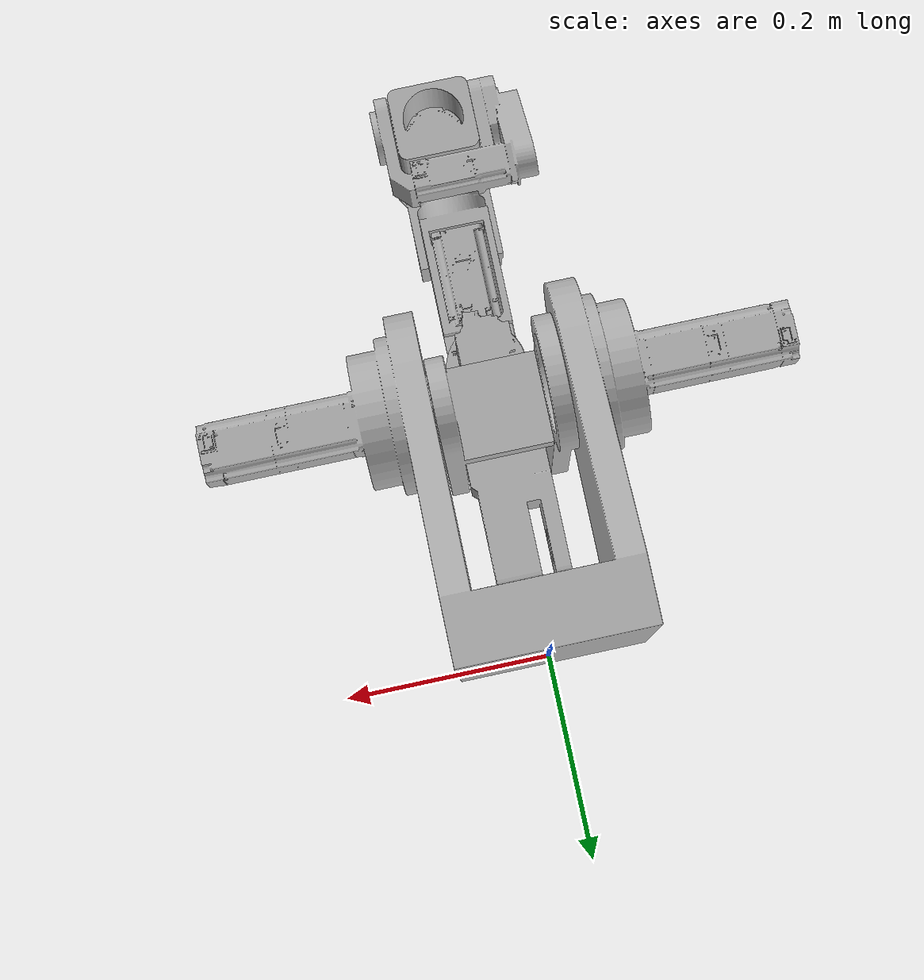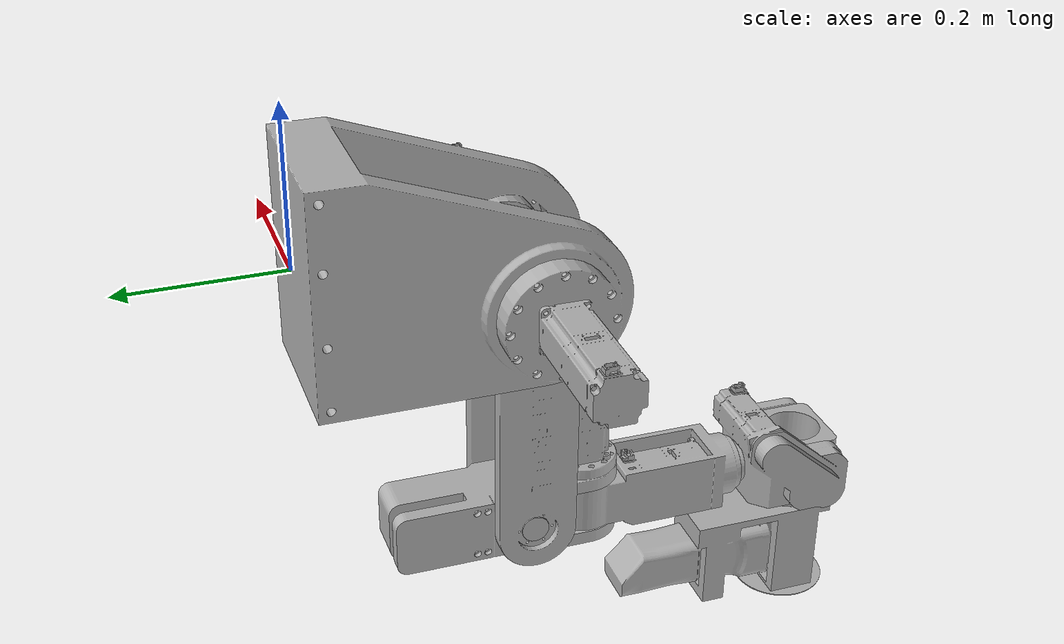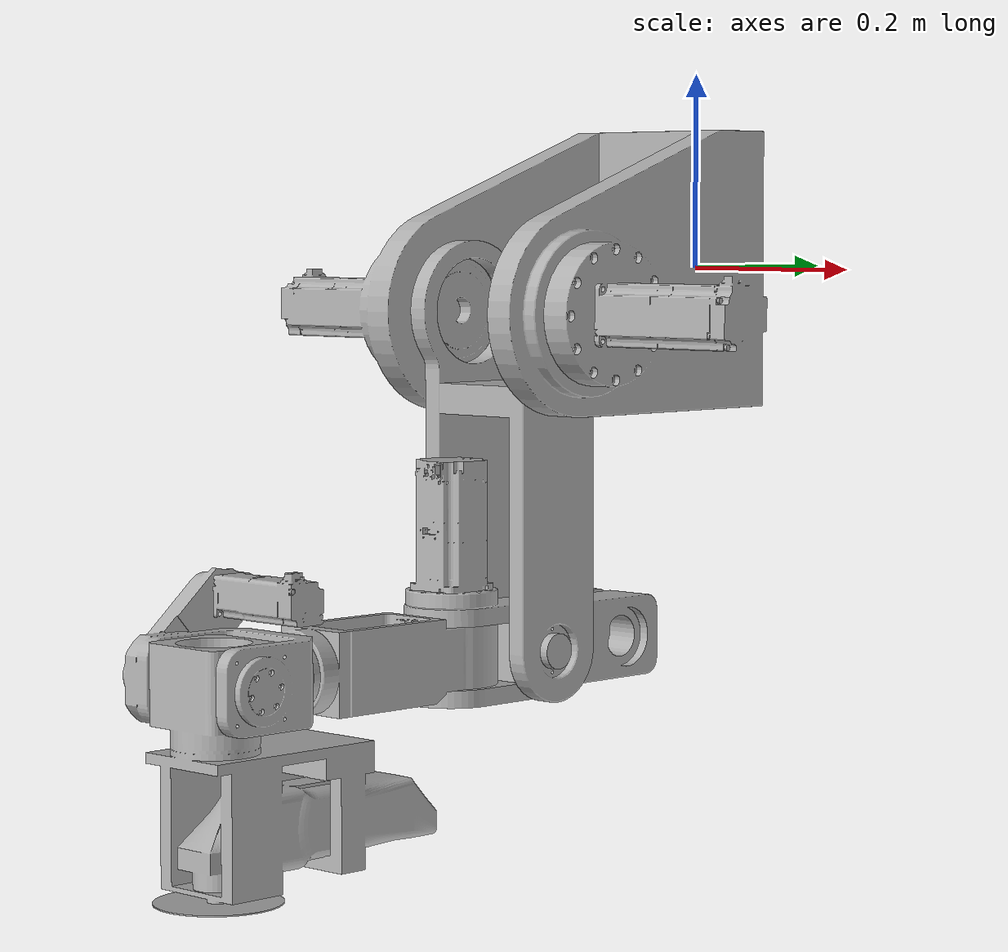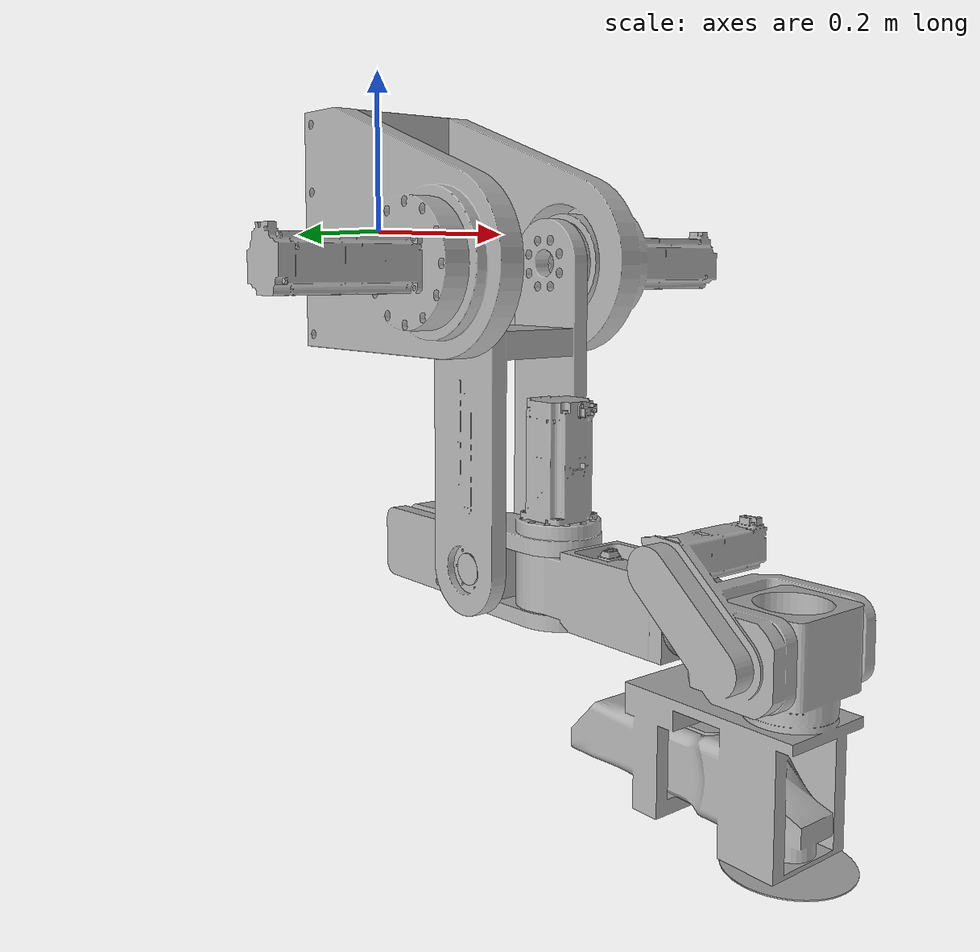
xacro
<?xml version="1.0" ?>
<robot name="manipulator0102" xmlns:xacro="http://www.ros.org/wiki/xacro">

<xacro:include filename="$(find manipulator0102_description)/urdf/materials.xacro" />
<xacro:include filename="$(find manipulator0102_description)/urdf/manipulator0102.trans" />
<xacro:include filename="$(find manipulator0102_description)/urdf/manipulator0102.gazebo" />
<link name="base_link">
  <inertial>
    <origin xyz="-0.0072308689955911075 -0.15081137024602517 -0.01780965802557159" rpy="0 0 0"/>
    <mass value="76.1154222860437"/>
    <inertia ixx="1.295628" iyy="1.21986" izz="1.794207" ixy="-0.001778" iyz="-0.144288" ixz="-0.000193"/>
  </inertial>
  <visual>
    <origin xyz="0 0 0" rpy="0 0 0"/>
    <geometry>
      <mesh filename="package://manipulator0102_description/meshes/base_link.stl" scale="0.001 0.001 0.001"/>
    </geometry>
    <material name="silver"/>
  </visual>
  <collision>
    <origin xyz="0 0 0" rpy="0 0 0"/>
    <geometry>
      <mesh filename="package://manipulator0102_description/meshes/base_link.stl" scale="0.001 0.001 0.001"/>
    </geometry>
  </collision>
</link>

<link name="link_1_1">
  <inertial>
    <origin xyz="-0.06658451479407954 0.0001898488318023417 -0.15592388946236677" rpy="0 0 0"/>
    <mass value="13.56198472678475"/>
    <inertia ixx="0.174021" iyy="0.201032" izz="0.052132" ixy="1e-06" iyz="0.000182" ixz="-0.000954"/>
  </inertial>
  <visual>
    <origin xyz="-0.059625 0.269138 0.040001" rpy="0 0 0"/>
    <geometry>
      <mesh filename="package://manipulator0102_description/meshes/link_1_1.stl" scale="0.001 0.001 0.001"/>
    </geometry>
    <material name="silver"/>
  </visual>
  <collision>
    <origin xyz="-0.059625 0.269138 0.040001" rpy="0 0 0"/>
    <geometry>
      <mesh filename="package://manipulator0102_description/meshes/link_1_1.stl" scale="0.001 0.001 0.001"/>
    </geometry>
  </collision>
</link>

<link name="link_2_1">
  <inertial>
    <origin xyz="-0.0680999291130664 0.011545339094991558 0.028880183806414494" rpy="0 0 0"/>
    <mass value="14.98901864726029"/>
    <inertia ixx="0.147432" iyy="0.060352" izz="0.106188" ixy="0.000519" iyz="0.039686" ixz="-6.3e-05"/>
  </inertial>
  <visual>
    <origin xyz="-0.059625 0.268735 0.370001" rpy="0 0 0"/>
    <geometry>
      <mesh filename="package://manipulator0102_description/meshes/link_2_1.stl" scale="0.001 0.001 0.001"/>
    </geometry>
    <material name="silver"/>
  </visual>
  <collision>
    <origin xyz="-0.059625 0.268735 0.370001" rpy="0 0 0"/>
    <geometry>
      <mesh filename="package://manipulator0102_description/meshes/link_2_1.stl" scale="0.001 0.001 0.001"/>
    </geometry>
  </collision>
</link>

<link name="link_3_1">
  <inertial>
    <origin xyz="9.811596254884203e-06 -0.09869574659506064 -0.03309974699460161" rpy="0 0 0"/>
    <mass value="8.318553158253737"/>
    <inertia ixx="0.041743" iyy="0.008031" izz="0.043189" ixy="-4e-06" iyz="0.000761" ixz="-4e-06"/>
  </inertial>
  <visual>
    <origin xyz="0.008375 0.348735 0.339501" rpy="0 0 0"/>
    <geometry>
      <mesh filename="package://manipulator0102_description/meshes/link_3_1.stl" scale="0.001 0.001 0.001"/>
    </geometry>
    <material name="silver"/>
  </visual>
  <collision>
    <origin xyz="0.008375 0.348735 0.339501" rpy="0 0 0"/>
    <geometry>
      <mesh filename="package://manipulator0102_description/meshes/link_3_1.stl" scale="0.001 0.001 0.001"/>
    </geometry>
  </collision>
</link>

<link name="link_4_1">
  <inertial>
    <origin xyz="-0.027199649456022476 -0.041840355099330484 0.02247341125321023" rpy="0 0 0"/>
    <mass value="6.3799372618247645"/>
    <inertia ixx="0.016749" iyy="0.026699" izz="0.027086" ixy="-0.000559" iyz="-0.003876" ixz="0.002353"/>
  </inertial>
  <visual>
    <origin xyz="0.008382 0.562235 0.3695" rpy="0 0 0"/>
    <geometry>
      <mesh filename="package://manipulator0102_description/meshes/link_4_1.stl" scale="0.001 0.001 0.001"/>
    </geometry>
    <material name="silver"/>
  </visual>
  <collision>
    <origin xyz="0.008382 0.562235 0.3695" rpy="0 0 0"/>
    <geometry>
      <mesh filename="package://manipulator0102_description/meshes/link_4_1.stl" scale="0.001 0.001 0.001"/>
    </geometry>
  </collision>
</link>

<link name="link_5_1">
  <inertial>
    <origin xyz="0.0487185560256407 0.07114116363267076 -0.1048157246178898" rpy="0 0 0"/>
    <mass value="16.678207874352367"/>
    <inertia ixx="0.144982" iyy="0.066423" izz="0.103059" ixy="-0.000873" iyz="0.029045" ixz="0.000839"/>
  </inertial>
  <visual>
    <origin xyz="0.056384 0.648734 0.3695" rpy="0 0 0"/>
    <geometry>
      <mesh filename="package://manipulator0102_description/meshes/link_5_1.stl" scale="0.001 0.001 0.001"/>
    </geometry>
    <material name="silver"/>
  </visual>
  <collision>
    <origin xyz="0.056384 0.648734 0.3695" rpy="0 0 0"/>
    <geometry>
      <mesh filename="package://manipulator0102_description/meshes/link_5_1.stl" scale="0.001 0.001 0.001"/>
    </geometry>
  </collision>
</link>

<joint name="Rev1" type="continuous">
  <origin xyz="0.059625 -0.269138 -0.040001" rpy="0 0 0"/>
  <parent link="base_link"/>
  <child link="link_1_1"/>
  <axis xyz="-1.0 0.0 0.0"/>
</joint>

<joint name="Rev6" type="continuous">
  <origin xyz="0.0 0.000403 -0.33" rpy="0 0 0"/>
  <parent link="link_1_1"/>
  <child link="link_2_1"/>
  <axis xyz="1.0 -0.0 -0.0"/>
</joint>

<joint name="Rev8" type="continuous">
  <origin xyz="-0.068 -0.08 0.0305" rpy="0 0 0"/>
  <parent link="link_2_1"/>
  <child link="link_3_1"/>
  <axis xyz="-0.0 -0.0 -1.0"/>
</joint>

<joint name="Rev9" type="continuous">
  <origin xyz="-7e-06 -0.2135 -0.029999" rpy="0 0 0"/>
  <parent link="link_3_1"/>
  <child link="link_4_1"/>
  <axis xyz="-2.9e-05 -1.0 0.0"/>
</joint>

<joint name="Rev10" type="continuous">
  <origin xyz="-0.048002 -0.086499 0.0" rpy="0 0 0"/>
  <parent link="link_4_1"/>
  <child link="link_5_1"/>
  <axis xyz="1.0 -2.9e-05 0.0"/>
</joint>

</robot>

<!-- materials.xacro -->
<robot name="manipulator0102" xmlns:xacro="http://www.ros.org/wiki/xacro" >

<material name="silver">
  <color rgba="0.700 0.700 0.700 1.000"/>
</material>

</robot>

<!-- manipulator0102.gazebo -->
<robot name="manipulator0102" xmlns:xacro="http://www.ros.org/wiki/xacro" >

<xacro:property name="body_color" value="Gazebo/Silver" />

<gazebo>
  <plugin name="control" filename="libgazebo_ros_control.so"/>
</gazebo>
<gazebo reference="base_link">
  <material>${body_color}</material>
  <mu1>0.2</mu1>
  <mu2>0.2</mu2>
  <selfCollide>true</selfCollide>
  <gravity>true</gravity>
</gazebo>

<gazebo reference="link_1_1">
  <material>${body_color}</material>
  <mu1>0.2</mu1>
  <mu2>0.2</mu2>
  <selfCollide>true</selfCollide>
</gazebo>

<gazebo reference="link_2_1">
  <material>${body_color}</material>
  <mu1>0.2</mu1>
  <mu2>0.2</mu2>
  <selfCollide>true</selfCollide>
</gazebo>

<gazebo reference="link_3_1">
  <material>${body_color}</material>
  <mu1>0.2</mu1>
  <mu2>0.2</mu2>
  <selfCollide>true</selfCollide>
</gazebo>

<gazebo reference="link_4_1">
  <material>${body_color}</material>
  <mu1>0.2</mu1>
  <mu2>0.2</mu2>
  <selfCollide>true</selfCollide>
</gazebo>

<gazebo reference="link_5_1">
  <material>${body_color}</material>
  <mu1>0.2</mu1>
  <mu2>0.2</mu2>
  <selfCollide>true</selfCollide>
</gazebo>

</robot>
